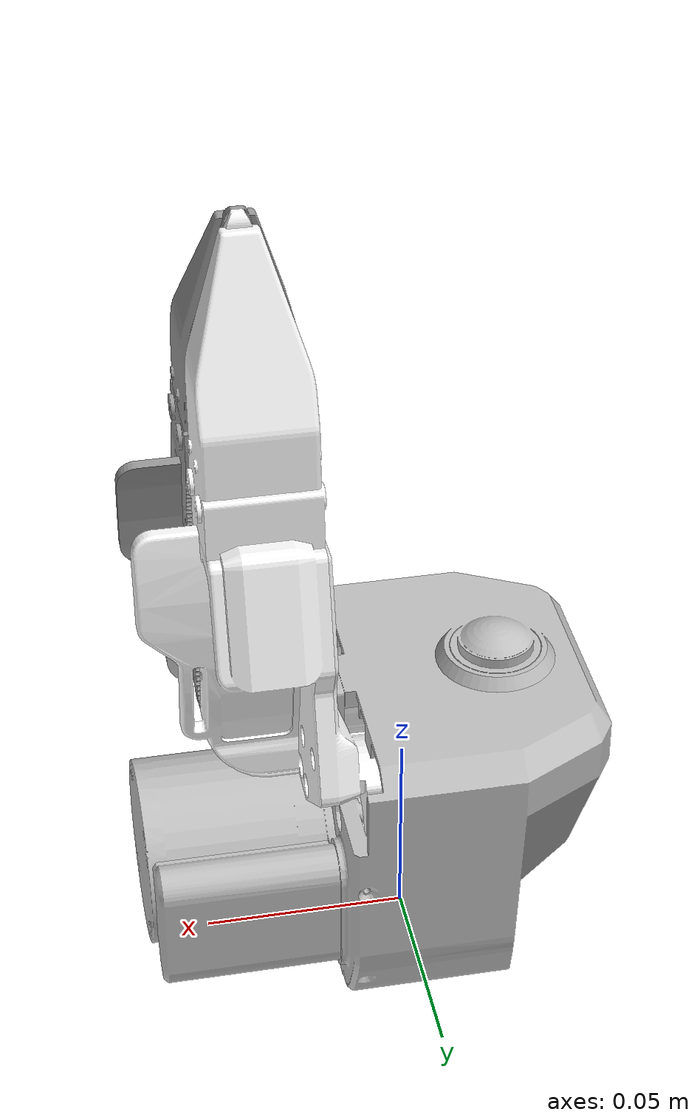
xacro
<?xml version="1.0"?>
<robot xmlns:xacro="http://www.ros.org/wiki/xacro" name="taccap_g1_slave">
  <xacro:arg name="prefix" default=""/>
  <xacro:arg name="with_mount" default="false"/>
  <xacro:arg name="mesh_root" default="package://taccap_description/meshes"/>
  <xacro:include filename="taccap_g1_slave_macro.xacro"/>
  <xacro:taccap_g1_slave prefix="$(arg prefix)" with_mount="$(arg with_mount)" mesh_root="$(arg mesh_root)"/>
</robot>

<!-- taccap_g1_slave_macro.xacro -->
<robot xmlns:xacro="http://www.ros.org/wiki/xacro">
  <!-- Mechanical description of the imported simulation baseline, not calibrated hardware limits. -->
  <xacro:macro name="taccap_g1_slave" params="prefix:='' with_mount:=false mesh_root:='package://taccap_description/meshes'">
    <material name="${prefix}taccap_base_mat"><color rgba="0.75294 0.75294 0.75294 1"/></material>
    <material name="${prefix}taccap_left_mat"><color rgba="1 1 1 1"/></material>
    <material name="${prefix}taccap_right_mat"><color rgba="0.60392 0.60392 0.60392 1"/></material>
    <material name="${prefix}taccap_cover_mat"><color rgba="0.89804 0.91765 0.92941 1"/></material>
    <xacro:property name="cad_xyz" value="0.01975 -0.0060769 0.034023"/>
    <xacro:property name="cad_rpy" value="0 ${-pi/2} 0"/>
    <xacro:if value="${with_mount}">
      <!-- Optional adapter; its robot-side face is the root and attaches to the arm flange. -->
      <link name="${prefix}taccap_mount_link">
        <visual name="${prefix}asm_visual">
          <origin xyz="0 0 0" rpy="${cad_rpy}"/>
          <geometry><mesh filename="${mesh_root}/Asm_link.STL"/></geometry>
          <material name="${prefix}taccap_cover_mat"/>
        </visual>
        <collision name="${prefix}asm_collision">
          <origin xyz="0 0 0" rpy="${cad_rpy}"/>
          <geometry><mesh filename="${mesh_root}/Asm_link.STL"/></geometry>
        </collision>
      </link>
      <joint name="${prefix}taccap_mount_joint" type="fixed">
        <parent link="${prefix}taccap_mount_link"/><child link="${prefix}taccap_base_link"/>
        <origin xyz="0 0 0.012" rpy="0 0 0"/>
      </joint>
    </xacro:if>
    <link name="${prefix}taccap_base_link">
      <!-- Simulation-tuned approximation replaces a known CAD mass/inertia unit mismatch.
           Values re-expressed from the native frame: CoM rotated, ixx/izz swapped. -->
      <inertial>
        <origin xyz="0.010155 -0.0007499 0.0361" rpy="0 0 0"/>
        <mass value="0.415"/>
        <inertia ixx="0.000573" iyy="0.000748" izz="0.000680" ixy="0" ixz="0" iyz="0"/>
      </inertial>
      <visual name="${prefix}base_visual">
        <origin xyz="${cad_xyz}" rpy="${cad_rpy}"/>
        <geometry><mesh filename="${mesh_root}/base_link.STL"/></geometry><material name="${prefix}taccap_base_mat"/>
      </visual>
      <collision name="${prefix}base_collision">
        <origin xyz="${cad_xyz}" rpy="${cad_rpy}"/>
        <geometry><mesh filename="${mesh_root}/base_link.STL"/></geometry>
      </collision>
    </link>
    <link name="${prefix}taccap_left_finger_link">
      <inertial>
        <origin xyz="0.020693 -0.00669 0.074921" rpy="0 0 0"/>
        <mass value="0.36678"/>
        <inertia ixx="0.00015235" iyy="0.00015466" izz="3.3606e-05" ixy="2.9254e-07" ixz="-2.4362e-06" iyz="-6.6715e-06"/>
      </inertial>
      <visual name="${prefix}left_finger_visual">
        <origin xyz="0 0 0" rpy="${cad_rpy}"/>
        <geometry><mesh filename="${mesh_root}/grip_left.STL"/></geometry><material name="${prefix}taccap_left_mat"/>
      </visual>
      <collision name="${prefix}left_finger_collision"><origin xyz="0 0 0" rpy="${cad_rpy}"/><geometry><mesh filename="${mesh_root}/grip_left.STL"/></geometry></collision>
    </link>
    <joint name="${prefix}taccap_left_finger_joint" type="revolute">
      <parent link="${prefix}taccap_base_link"/><child link="${prefix}taccap_left_finger_link"/>
      <origin xyz="0.0120336718 0.0199500106 0.0484999712" rpy="0 0 0"/>
      <axis xyz="1 0 0"/>
      <!-- Effort and velocity are simulation settings; see config/model.json. -->
      <limit lower="-0.5047492196767601" upper="0" effort="4" velocity="1"/>
      <dynamics damping="0.08" friction="0.01"/>
      <mimic joint="${prefix}taccap_right_finger_joint" multiplier="-1" offset="0"/>
    </joint>
    <link name="${prefix}taccap_right_finger_link">
      <inertial>
        <origin xyz="0.020629 0.0066814 0.07491" rpy="0 0 0"/>
        <mass value="0.36678"/>
        <inertia ixx="0.00015238" iyy="0.0001547" izz="3.3592e-05" ixy="-2.9549e-07" ixz="-2.4418e-06" iyz="6.6629e-06"/>
      </inertial>
      <visual name="${prefix}right_finger_visual">
        <origin xyz="0 0 0" rpy="${cad_rpy}"/>
        <geometry><mesh filename="${mesh_root}/grip_right.STL"/></geometry><material name="${prefix}taccap_right_mat"/>
      </visual>
      <collision name="${prefix}right_finger_collision"><origin xyz="0 0 0" rpy="${cad_rpy}"/><geometry><mesh filename="${mesh_root}/grip_right.STL"/></geometry></collision>
    </link>
    <joint name="${prefix}taccap_right_finger_joint" type="revolute">
      <parent link="${prefix}taccap_base_link"/><child link="${prefix}taccap_right_finger_link"/>
      <origin xyz="0.0120336718 -0.0199499894 0.0484999712" rpy="0 0 0"/>
      <axis xyz="1 0 0"/>
      <limit lower="0" upper="0.5047492196767601" effort="4" velocity="1"/>
      <dynamics damping="0.08" friction="0.01"/>
    </joint>
    <!-- Massless virtual EEF: centre of the closed fingertips' most distal face (mesh-derived,
         shared with the master grippers); same axes as taccap_base_link. -->
    <link name="${prefix}taccap_eef_link"/>
    <joint name="${prefix}taccap_eef_joint" type="fixed">
      <parent link="${prefix}taccap_base_link"/><child link="${prefix}taccap_eef_link"/>
      <origin xyz="0.036575 0 0.2009217" rpy="0 0 0"/>
    </joint>
    <link name="${prefix}taccap_camera_link"/>
    <joint name="${prefix}taccap_camera_joint" type="fixed">
      <parent link="${prefix}taccap_base_link"/><child link="${prefix}taccap_camera_link"/>
      <origin xyz="-0.02275 0 0.06125" rpy="0 0 0"/>
    </joint>
    <!-- Optical frame (REP-103): +Z optical axis, +X image right, +Y image down toward the fingers. -->
    <link name="${prefix}taccap_camera_optical_link"/>
    <joint name="${prefix}taccap_camera_optical_joint" type="fixed">
      <parent link="${prefix}taccap_camera_link"/><child link="${prefix}taccap_camera_optical_link"/>
      <origin xyz="0 0 0" rpy="0 0 ${-pi/2}"/>
    </joint>
  </xacro:macro>
</robot>
